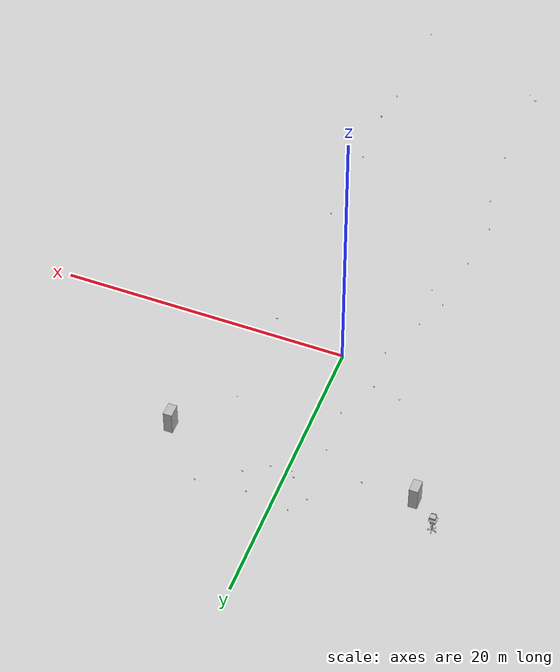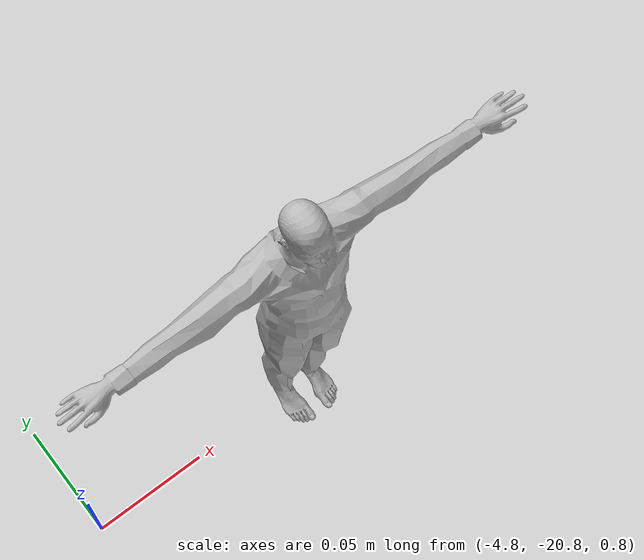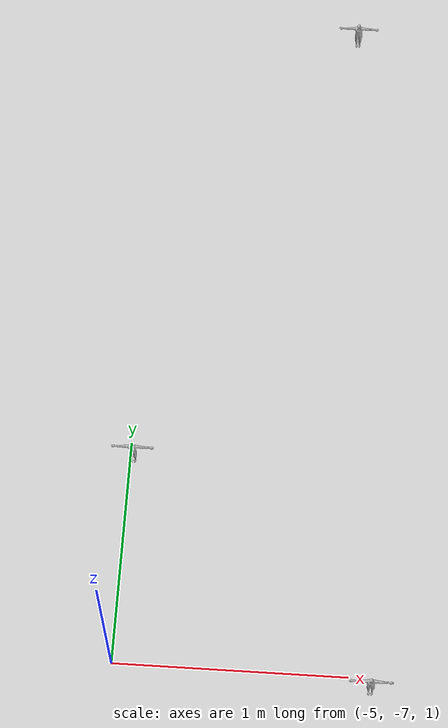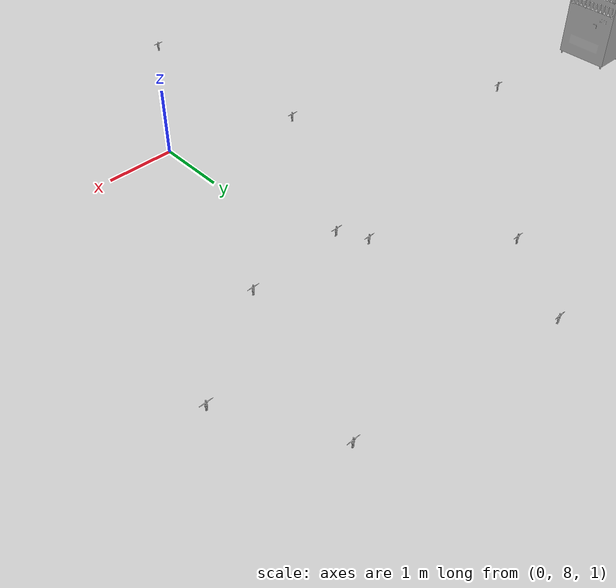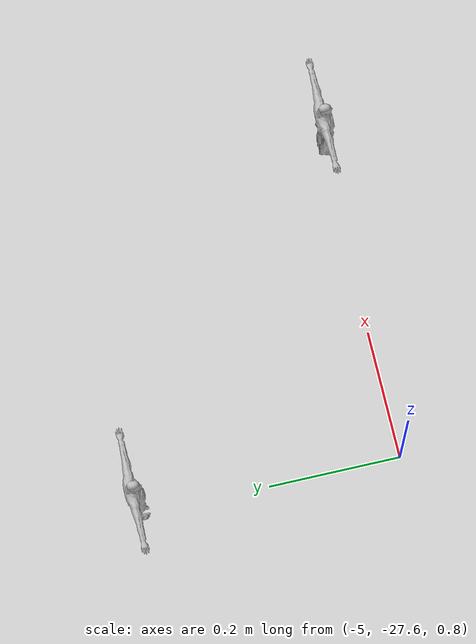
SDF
<sdf version="1.6">
 <world name="hospital_peak_shift_change">
  <gravity>0 0 -9.8</gravity>
  <physics default="0" name="default_physics" type="ode">
   <max_step_size>0.01</max_step_size>
   <real_time_factor>1</real_time_factor>
   <real_time_update_rate>100</real_time_update_rate>
  </physics>
  <scene><ambient>0.6 0.6 0.6 1</ambient><background>0.4 0.4 0.4 1</background><shadows>false</shadows></scene>
  <include><uri>model://sun</uri></include>
  <model name="ground_plane_large">
   <static>true</static>
   <pose>0 0 -0.1 0 0 0</pose>
   <link name="link">
    <collision name="collision">
     <geometry><plane><normal>0 0 1</normal><size>1000 1000</size></plane></geometry>
    </collision>
    <visual name="visual">
     <geometry><plane><normal>0 0 1</normal><size>1000 1000</size></plane></geometry>
    </visual>
   </link>
  </model>
  <model name="VendingMachine_1">
   <include>
    <uri>model://VendingMachine</uri>
    <static>true</static>
    <pose>-8.45694 9.63064 0 0 -0 0</pose>
   </include>
  </model>
  <model name="VendingMachine_2">
   <include>
    <uri>model://VendingMachine</uri>
    <static>true</static>
    <pose>8.35378 9.64852 -3e-06 -6e-06 0 0</pose>
   </include>
  </model>
  <model name="BPCart_1">
   <include>
    <uri>model://BPCart</uri>
    <static>true</static>
    <pose>-10.1788 11.173 0.003446 1e-06 -0 0.003096</pose>
   </include>
  </model>
  <model name="peak_1">
   <pose>-0.6 10.8 0 0 0 0</pose>
   <static>false</static>
   <link name="link">
    <inertial>
     <mass>5.0</mass>
     <inertia><ixx>0.1</ixx><ixy>0</ixy><ixz>0</ixz><iyy>0.1</iyy><iyz>0</iyz><izz>0.1</izz></inertia>
    </inertial>
    <collision name="collision">
     <geometry><box><size>0.5 0.5 1.8</size></box></geometry>
     <pose>0 0 0.9 0 0 0</pose>
    </collision>
    <visual name="visual">
     <pose>0 0 0.9 0 0 0</pose>
     <geometry>
      <mesh><uri>/usr/share/gazebo-11/media/models/stand.dae</uri><scale>1.0 1.0 1.0</scale></mesh>
     </geometry>
    </visual>
   </link>
   <plugin name="peak_1_planar_move" filename="libgazebo_ros_planar_move.so">
    <ros><namespace>peak_1</namespace></ros>
    <update_rate>50</update_rate>
    <publish_odom>false</publish_odom>
    <publish_odom_tf>false</publish_odom_tf>
   </plugin>
  </model>
  <model name="peak_2">
   <pose>-2.0 8.4 0 0 0 0</pose>
   <static>false</static>
   <link name="link">
    <inertial>
     <mass>5.0</mass>
     <inertia><ixx>0.1</ixx><ixy>0</ixy><ixz>0</ixz><iyy>0.1</iyy><iyz>0</iyz><izz>0.1</izz></inertia>
    </inertial>
    <collision name="collision">
     <geometry><box><size>0.5 0.5 1.8</size></box></geometry>
     <pose>0 0 0.9 0 0 0</pose>
    </collision>
    <visual name="visual">
     <pose>0 0 0.9 0 0 0</pose>
     <geometry>
      <mesh><uri>/usr/share/gazebo-11/media/models/stand.dae</uri><scale>1.0 1.0 1.0</scale></mesh>
     </geometry>
    </visual>
   </link>
   <plugin name="peak_2_planar_move" filename="libgazebo_ros_planar_move.so">
    <ros><namespace>peak_2</namespace></ros>
    <update_rate>50</update_rate>
    <publish_odom>false</publish_odom>
    <publish_odom_tf>false</publish_odom_tf>
   </plugin>
  </model>
  <model name="peak_3">
   <pose>-1.8 5.2 0 0 0 0</pose>
   <static>false</static>
   <link name="link">
    <inertial>
     <mass>5.0</mass>
     <inertia><ixx>0.1</ixx><ixy>0</ixy><ixz>0</ixz><iyy>0.1</iyy><iyz>0</iyz><izz>0.1</izz></inertia>
    </inertial>
    <collision name="collision">
     <geometry><box><size>0.5 0.5 1.8</size></box></geometry>
     <pose>0 0 0.9 0 0 0</pose>
    </collision>
    <visual name="visual">
     <pose>0 0 0.9 0 0 0</pose>
     <geometry>
      <mesh><uri>/usr/share/gazebo-11/media/models/stand.dae</uri><scale>1.0 1.0 1.0</scale></mesh>
     </geometry>
    </visual>
   </link>
   <plugin name="peak_3_planar_move" filename="libgazebo_ros_planar_move.so">
    <ros><namespace>peak_3</namespace></ros>
    <update_rate>50</update_rate>
    <publish_odom>false</publish_odom>
    <publish_odom_tf>false</publish_odom_tf>
   </plugin>
  </model>
  <model name="peak_4">
   <pose>-3.1 2.4 0 0 0 0</pose>
   <static>false</static>
   <link name="link">
    <inertial>
     <mass>5.0</mass>
     <inertia><ixx>0.1</ixx><ixy>0</ixy><ixz>0</ixz><iyy>0.1</iyy><iyz>0</iyz><izz>0.1</izz></inertia>
    </inertial>
    <collision name="collision">
     <geometry><box><size>0.5 0.5 1.8</size></box></geometry>
     <pose>0 0 0.9 0 0 0</pose>
    </collision>
    <visual name="visual">
     <pose>0 0 0.9 0 0 0</pose>
     <geometry>
      <mesh><uri>/usr/share/gazebo-11/media/models/stand.dae</uri><scale>1.0 1.0 1.0</scale></mesh>
     </geometry>
    </visual>
   </link>
   <plugin name="peak_4_planar_move" filename="libgazebo_ros_planar_move.so">
    <ros><namespace>peak_4</namespace></ros>
    <update_rate>50</update_rate>
    <publish_odom>false</publish_odom>
    <publish_odom_tf>false</publish_odom_tf>
   </plugin>
  </model>
  <model name="peak_5">
   <pose>-2.8 -0.6 0 0 0 0</pose>
   <static>false</static>
   <link name="link">
    <inertial>
     <mass>5.0</mass>
     <inertia><ixx>0.1</ixx><ixy>0</ixy><ixz>0</ixz><iyy>0.1</iyy><iyz>0</iyz><izz>0.1</izz></inertia>
    </inertial>
    <collision name="collision">
     <geometry><box><size>0.5 0.5 1.8</size></box></geometry>
     <pose>0 0 0.9 0 0 0</pose>
    </collision>
    <visual name="visual">
     <pose>0 0 0.9 0 0 0</pose>
     <geometry>
      <mesh><uri>/usr/share/gazebo-11/media/models/stand.dae</uri><scale>1.0 1.0 1.0</scale></mesh>
     </geometry>
    </visual>
   </link>
   <plugin name="peak_5_planar_move" filename="libgazebo_ros_planar_move.so">
    <ros><namespace>peak_5</namespace></ros>
    <update_rate>50</update_rate>
    <publish_odom>false</publish_odom>
    <publish_odom_tf>false</publish_odom_tf>
   </plugin>
  </model>
  <model name="peak_6">
   <pose>-4.1 -3.8 0 0 0 0</pose>
   <static>false</static>
   <link name="link">
    <inertial>
     <mass>5.0</mass>
     <inertia><ixx>0.1</ixx><ixy>0</ixy><ixz>0</ixz><iyy>0.1</iyy><iyz>0</iyz><izz>0.1</izz></inertia>
    </inertial>
    <collision name="collision">
     <geometry><box><size>0.5 0.5 1.8</size></box></geometry>
     <pose>0 0 0.9 0 0 0</pose>
    </collision>
    <visual name="visual">
     <pose>0 0 0.9 0 0 0</pose>
     <geometry>
      <mesh><uri>/usr/share/gazebo-11/media/models/stand.dae</uri><scale>1.0 1.0 1.0</scale></mesh>
     </geometry>
    </visual>
   </link>
   <plugin name="peak_6_planar_move" filename="libgazebo_ros_planar_move.so">
    <ros><namespace>peak_6</namespace></ros>
    <update_rate>50</update_rate>
    <publish_odom>false</publish_odom>
    <publish_odom_tf>false</publish_odom_tf>
   </plugin>
  </model>
  <model name="peak_7">
   <pose>-3.9 -7.0 0 0 0 0</pose>
   <static>false</static>
   <link name="link">
    <inertial>
     <mass>5.0</mass>
     <inertia><ixx>0.1</ixx><ixy>0</ixy><ixz>0</ixz><iyy>0.1</iyy><iyz>0</iyz><izz>0.1</izz></inertia>
    </inertial>
    <collision name="collision">
     <geometry><box><size>0.5 0.5 1.8</size></box></geometry>
     <pose>0 0 0.9 0 0 0</pose>
    </collision>
    <visual name="visual">
     <pose>0 0 0.9 0 0 0</pose>
     <geometry>
      <mesh><uri>/usr/share/gazebo-11/media/models/stand.dae</uri><scale>1.0 1.0 1.0</scale></mesh>
     </geometry>
    </visual>
   </link>
   <plugin name="peak_7_planar_move" filename="libgazebo_ros_planar_move.so">
    <ros><namespace>peak_7</namespace></ros>
    <update_rate>50</update_rate>
    <publish_odom>false</publish_odom>
    <publish_odom_tf>false</publish_odom_tf>
   </plugin>
  </model>
  <model name="peak_8">
   <pose>-5.4 -10.2 0 0 0 0</pose>
   <static>false</static>
   <link name="link">
    <inertial>
     <mass>5.0</mass>
     <inertia><ixx>0.1</ixx><ixy>0</ixy><ixz>0</ixz><iyy>0.1</iyy><iyz>0</iyz><izz>0.1</izz></inertia>
    </inertial>
    <collision name="collision">
     <geometry><box><size>0.5 0.5 1.8</size></box></geometry>
     <pose>0 0 0.9 0 0 0</pose>
    </collision>
    <visual name="visual">
     <pose>0 0 0.9 0 0 0</pose>
     <geometry>
      <mesh><uri>/usr/share/gazebo-11/media/models/stand.dae</uri><scale>1.0 1.0 1.0</scale></mesh>
     </geometry>
    </visual>
   </link>
   <plugin name="peak_8_planar_move" filename="libgazebo_ros_planar_move.so">
    <ros><namespace>peak_8</namespace></ros>
    <update_rate>50</update_rate>
    <publish_odom>false</publish_odom>
    <publish_odom_tf>false</publish_odom_tf>
   </plugin>
  </model>
  <model name="peak_9">
   <pose>-5.8 -13.8 0 0 0 0</pose>
   <static>false</static>
   <link name="link">
    <inertial>
     <mass>5.0</mass>
     <inertia><ixx>0.1</ixx><ixy>0</ixy><ixz>0</ixz><iyy>0.1</iyy><iyz>0</iyz><izz>0.1</izz></inertia>
    </inertial>
    <collision name="collision">
     <geometry><box><size>0.5 0.5 1.8</size></box></geometry>
     <pose>0 0 0.9 0 0 0</pose>
    </collision>
    <visual name="visual">
     <pose>0 0 0.9 0 0 0</pose>
     <geometry>
      <mesh><uri>/usr/share/gazebo-11/media/models/stand.dae</uri><scale>1.0 1.0 1.0</scale></mesh>
     </geometry>
    </visual>
   </link>
   <plugin name="peak_9_planar_move" filename="libgazebo_ros_planar_move.so">
    <ros><namespace>peak_9</namespace></ros>
    <update_rate>50</update_rate>
    <publish_odom>false</publish_odom>
    <publish_odom_tf>false</publish_odom_tf>
   </plugin>
  </model>
  <model name="peak_10">
   <pose>4.8 -17.2 0 0 0 0</pose>
   <static>false</static>
   <link name="link">
    <inertial>
     <mass>5.0</mass>
     <inertia><ixx>0.1</ixx><ixy>0</ixy><ixz>0</ixz><iyy>0.1</iyy><iyz>0</iyz><izz>0.1</izz></inertia>
    </inertial>
    <collision name="collision">
     <geometry><box><size>0.5 0.5 1.8</size></box></geometry>
     <pose>0 0 0.9 0 0 0</pose>
    </collision>
    <visual name="visual">
     <pose>0 0 0.9 0 0 0</pose>
     <geometry>
      <mesh><uri>/usr/share/gazebo-11/media/models/stand.dae</uri><scale>1.0 1.0 1.0</scale></mesh>
     </geometry>
    </visual>
   </link>
   <plugin name="peak_10_planar_move" filename="libgazebo_ros_planar_move.so">
    <ros><namespace>peak_10</namespace></ros>
    <update_rate>50</update_rate>
    <publish_odom>false</publish_odom>
    <publish_odom_tf>false</publish_odom_tf>
   </plugin>
  </model>
  <model name="peak_11">
   <pose>-4.7 -20.8 0 0 0 0</pose>
   <static>false</static>
   <link name="link">
    <inertial>
     <mass>5.0</mass>
     <inertia><ixx>0.1</ixx><ixy>0</ixy><ixz>0</ixz><iyy>0.1</iyy><iyz>0</iyz><izz>0.1</izz></inertia>
    </inertial>
    <collision name="collision">
     <geometry><box><size>0.5 0.5 1.8</size></box></geometry>
     <pose>0 0 0.9 0 0 0</pose>
    </collision>
    <visual name="visual">
     <pose>0 0 0.9 0 0 0</pose>
     <geometry>
      <mesh><uri>/usr/share/gazebo-11/media/models/stand.dae</uri><scale>1.0 1.0 1.0</scale></mesh>
     </geometry>
    </visual>
   </link>
   <plugin name="peak_11_planar_move" filename="libgazebo_ros_planar_move.so">
    <ros><namespace>peak_11</namespace></ros>
    <update_rate>50</update_rate>
    <publish_odom>false</publish_odom>
    <publish_odom_tf>false</publish_odom_tf>
   </plugin>
  </model>
  <model name="peak_12">
   <pose>4.6 -24.0 0 0 0 0</pose>
   <static>false</static>
   <link name="link">
    <inertial>
     <mass>5.0</mass>
     <inertia><ixx>0.1</ixx><ixy>0</ixy><ixz>0</ixz><iyy>0.1</iyy><iyz>0</iyz><izz>0.1</izz></inertia>
    </inertial>
    <collision name="collision">
     <geometry><box><size>0.5 0.5 1.8</size></box></geometry>
     <pose>0 0 0.9 0 0 0</pose>
    </collision>
    <visual name="visual">
     <pose>0 0 0.9 0 0 0</pose>
     <geometry>
      <mesh><uri>/usr/share/gazebo-11/media/models/stand.dae</uri><scale>1.0 1.0 1.0</scale></mesh>
     </geometry>
    </visual>
   </link>
   <plugin name="peak_12_planar_move" filename="libgazebo_ros_planar_move.so">
    <ros><namespace>peak_12</namespace></ros>
    <update_rate>50</update_rate>
    <publish_odom>false</publish_odom>
    <publish_odom_tf>false</publish_odom_tf>
   </plugin>
  </model>
  <model name="peak_13">
   <pose>-4.5 -27.6 0 0 0 0</pose>
   <static>false</static>
   <link name="link">
    <inertial>
     <mass>5.0</mass>
     <inertia><ixx>0.1</ixx><ixy>0</ixy><ixz>0</ixz><iyy>0.1</iyy><iyz>0</iyz><izz>0.1</izz></inertia>
    </inertial>
    <collision name="collision">
     <geometry><box><size>0.5 0.5 1.8</size></box></geometry>
     <pose>0 0 0.9 0 0 0</pose>
    </collision>
    <visual name="visual">
     <pose>0 0 0.9 0 0 0</pose>
     <geometry>
      <mesh><uri>/usr/share/gazebo-11/media/models/stand.dae</uri><scale>1.0 1.0 1.0</scale></mesh>
     </geometry>
    </visual>
   </link>
   <plugin name="peak_13_planar_move" filename="libgazebo_ros_planar_move.so">
    <ros><namespace>peak_13</namespace></ros>
    <update_rate>50</update_rate>
    <publish_odom>false</publish_odom>
    <publish_odom_tf>false</publish_odom_tf>
   </plugin>
  </model>
  <model name="peak_14">
   <pose>4.4 -31.2 0 0 0 0</pose>
   <static>false</static>
   <link name="link">
    <inertial>
     <mass>5.0</mass>
     <inertia><ixx>0.1</ixx><ixy>0</ixy><ixz>0</ixz><iyy>0.1</iyy><iyz>0</iyz><izz>0.1</izz></inertia>
    </inertial>
    <collision name="collision">
     <geometry><box><size>0.5 0.5 1.8</size></box></geometry>
     <pose>0 0 0.9 0 0 0</pose>
    </collision>
    <visual name="visual">
     <pose>0 0 0.9 0 0 0</pose>
     <geometry>
      <mesh><uri>/usr/share/gazebo-11/media/models/stand.dae</uri><scale>1.0 1.0 1.0</scale></mesh>
     </geometry>
    </visual>
   </link>
   <plugin name="peak_14_planar_move" filename="libgazebo_ros_planar_move.so">
    <ros><namespace>peak_14</namespace></ros>
    <update_rate>50</update_rate>
    <publish_odom>false</publish_odom>
    <publish_odom_tf>false</publish_odom_tf>
   </plugin>
  </model>
  <model name="peak_15">
   <pose>5.0 13.6 0 0 0 0</pose>
   <static>false</static>
   <link name="link">
    <inertial>
     <mass>5.0</mass>
     <inertia><ixx>0.1</ixx><ixy>0</ixy><ixz>0</ixz><iyy>0.1</iyy><iyz>0</iyz><izz>0.1</izz></inertia>
    </inertial>
    <collision name="collision">
     <geometry><box><size>0.5 0.5 1.8</size></box></geometry>
     <pose>0 0 0.9 0 0 0</pose>
    </collision>
    <visual name="visual">
     <pose>0 0 0.9 0 0 0</pose>
     <geometry>
      <mesh><uri>/usr/share/gazebo-11/media/models/stand.dae</uri><scale>1.0 1.0 1.0</scale></mesh>
     </geometry>
    </visual>
   </link>
   <plugin name="peak_15_planar_move" filename="libgazebo_ros_planar_move.so">
    <ros><namespace>peak_15</namespace></ros>
    <update_rate>50</update_rate>
    <publish_odom>false</publish_odom>
    <publish_odom_tf>false</publish_odom_tf>
   </plugin>
  </model>
  <model name="peak_16">
   <pose>-5.0 10.0 0 0 0 0</pose>
   <static>false</static>
   <link name="link">
    <inertial>
     <mass>5.0</mass>
     <inertia><ixx>0.1</ixx><ixy>0</ixy><ixz>0</ixz><iyy>0.1</iyy><iyz>0</iyz><izz>0.1</izz></inertia>
    </inertial>
    <collision name="collision">
     <geometry><box><size>0.5 0.5 1.8</size></box></geometry>
     <pose>0 0 0.9 0 0 0</pose>
    </collision>
    <visual name="visual">
     <pose>0 0 0.9 0 0 0</pose>
     <geometry>
      <mesh><uri>/usr/share/gazebo-11/media/models/stand.dae</uri><scale>1.0 1.0 1.0</scale></mesh>
     </geometry>
    </visual>
   </link>
   <plugin name="peak_16_planar_move" filename="libgazebo_ros_planar_move.so">
    <ros><namespace>peak_16</namespace></ros>
    <update_rate>50</update_rate>
    <publish_odom>false</publish_odom>
    <publish_odom_tf>false</publish_odom_tf>
   </plugin>
  </model>
  <model name="peak_17">
   <pose>5.0 6.4 0 0 0 0</pose>
   <static>false</static>
   <link name="link">
    <inertial>
     <mass>5.0</mass>
     <inertia><ixx>0.1</ixx><ixy>0</ixy><ixz>0</ixz><iyy>0.1</iyy><iyz>0</iyz><izz>0.1</izz></inertia>
    </inertial>
    <collision name="collision">
     <geometry><box><size>0.5 0.5 1.8</size></box></geometry>
     <pose>0 0 0.9 0 0 0</pose>
    </collision>
    <visual name="visual">
     <pose>0 0 0.9 0 0 0</pose>
     <geometry>
      <mesh><uri>/usr/share/gazebo-11/media/models/stand.dae</uri><scale>1.0 1.0 1.0</scale></mesh>
     </geometry>
    </visual>
   </link>
   <plugin name="peak_17_planar_move" filename="libgazebo_ros_planar_move.so">
    <ros><namespace>peak_17</namespace></ros>
    <update_rate>50</update_rate>
    <publish_odom>false</publish_odom>
    <publish_odom_tf>false</publish_odom_tf>
   </plugin>
  </model>
  <model name="peak_18">
   <pose>-5.0 2.8 0 0 0 0</pose>
   <static>false</static>
   <link name="link">
    <inertial>
     <mass>5.0</mass>
     <inertia><ixx>0.1</ixx><ixy>0</ixy><ixz>0</ixz><iyy>0.1</iyy><iyz>0</iyz><izz>0.1</izz></inertia>
    </inertial>
    <collision name="collision">
     <geometry><box><size>0.5 0.5 1.8</size></box></geometry>
     <pose>0 0 0.9 0 0 0</pose>
    </collision>
    <visual name="visual">
     <pose>0 0 0.9 0 0 0</pose>
     <geometry>
      <mesh><uri>/usr/share/gazebo-11/media/models/stand.dae</uri><scale>1.0 1.0 1.0</scale></mesh>
     </geometry>
    </visual>
   </link>
   <plugin name="peak_18_planar_move" filename="libgazebo_ros_planar_move.so">
    <ros><namespace>peak_18</namespace></ros>
    <update_rate>50</update_rate>
    <publish_odom>false</publish_odom>
    <publish_odom_tf>false</publish_odom_tf>
   </plugin>
  </model>
  <model name="peak_19">
   <pose>5.0 -0.8 0 0 0 0</pose>
   <static>false</static>
   <link name="link">
    <inertial>
     <mass>5.0</mass>
     <inertia><ixx>0.1</ixx><ixy>0</ixy><ixz>0</ixz><iyy>0.1</iyy><iyz>0</iyz><izz>0.1</izz></inertia>
    </inertial>
    <collision name="collision">
     <geometry><box><size>0.5 0.5 1.8</size></box></geometry>
     <pose>0 0 0.9 0 0 0</pose>
    </collision>
    <visual name="visual">
     <pose>0 0 0.9 0 0 0</pose>
     <geometry>
      <mesh><uri>/usr/share/gazebo-11/media/models/stand.dae</uri><scale>1.0 1.0 1.0</scale></mesh>
     </geometry>
    </visual>
   </link>
   <plugin name="peak_19_planar_move" filename="libgazebo_ros_planar_move.so">
    <ros><namespace>peak_19</namespace></ros>
    <update_rate>50</update_rate>
    <publish_odom>false</publish_odom>
    <publish_odom_tf>false</publish_odom_tf>
   </plugin>
  </model>
  <model name="peak_20">
   <pose>-5.0 -6.0 0 0 0 0</pose>
   <static>false</static>
   <link name="link">
    <inertial>
     <mass>5.0</mass>
     <inertia><ixx>0.1</ixx><ixy>0</ixy><ixz>0</ixz><iyy>0.1</iyy><iyz>0</iyz><izz>0.1</izz></inertia>
    </inertial>
    <collision name="collision">
     <geometry><box><size>0.5 0.5 1.8</size></box></geometry>
     <pose>0 0 0.9 0 0 0</pose>
    </collision>
    <visual name="visual">
     <pose>0 0 0.9 0 0 0</pose>
     <geometry>
      <mesh><uri>/usr/share/gazebo-11/media/models/stand.dae</uri><scale>1.0 1.0 1.0</scale></mesh>
     </geometry>
    </visual>
   </link>
   <plugin name="peak_20_planar_move" filename="libgazebo_ros_planar_move.so">
    <ros><namespace>peak_20</namespace></ros>
    <update_rate>50</update_rate>
    <publish_odom>false</publish_odom>
    <publish_odom_tf>false</publish_odom_tf>
   </plugin>
  </model>
  <model name="peak_21">
   <pose>5.0 -11.2 0 0 0 0</pose>
   <static>false</static>
   <link name="link">
    <inertial>
     <mass>5.0</mass>
     <inertia><ixx>0.1</ixx><ixy>0</ixy><ixz>0</ixz><iyy>0.1</iyy><iyz>0</iyz><izz>0.1</izz></inertia>
    </inertial>
    <collision name="collision">
     <geometry><box><size>0.5 0.5 1.8</size></box></geometry>
     <pose>0 0 0.9 0 0 0</pose>
    </collision>
    <visual name="visual">
     <pose>0 0 0.9 0 0 0</pose>
     <geometry>
      <mesh><uri>/usr/share/gazebo-11/media/models/stand.dae</uri><scale>1.0 1.0 1.0</scale></mesh>
     </geometry>
    </visual>
   </link>
   <plugin name="peak_21_planar_move" filename="libgazebo_ros_planar_move.so">
    <ros><namespace>peak_21</namespace></ros>
    <update_rate>50</update_rate>
    <publish_odom>false</publish_odom>
    <publish_odom_tf>false</publish_odom_tf>
   </plugin>
  </model>
  <model name="peak_22">
   <pose>-5.0 -16.4 0 0 0 0</pose>
   <static>false</static>
   <link name="link">
    <inertial>
     <mass>5.0</mass>
     <inertia><ixx>0.1</ixx><ixy>0</ixy><ixz>0</ixz><iyy>0.1</iyy><iyz>0</iyz><izz>0.1</izz></inertia>
    </inertial>
    <collision name="collision">
     <geometry><box><size>0.5 0.5 1.8</size></box></geometry>
     <pose>0 0 0.9 0 0 0</pose>
    </collision>
    <visual name="visual">
     <pose>0 0 0.9 0 0 0</pose>
     <geometry>
      <mesh><uri>/usr/share/gazebo-11/media/models/stand.dae</uri><scale>1.0 1.0 1.0</scale></mesh>
     </geometry>
    </visual>
   </link>
   <plugin name="peak_22_planar_move" filename="libgazebo_ros_planar_move.so">
    <ros><namespace>peak_22</namespace></ros>
    <update_rate>50</update_rate>
    <publish_odom>false</publish_odom>
    <publish_odom_tf>false</publish_odom_tf>
   </plugin>
  </model>
  <model name="peak_23">
   <pose>5.0 -21.6 0 0 0 0</pose>
   <static>false</static>
   <link name="link">
    <inertial>
     <mass>5.0</mass>
     <inertia><ixx>0.1</ixx><ixy>0</ixy><ixz>0</ixz><iyy>0.1</iyy><iyz>0</iyz><izz>0.1</izz></inertia>
    </inertial>
    <collision name="collision">
     <geometry><box><size>0.5 0.5 1.8</size></box></geometry>
     <pose>0 0 0.9 0 0 0</pose>
    </collision>
    <visual name="visual">
     <pose>0 0 0.9 0 0 0</pose>
     <geometry>
      <mesh><uri>/usr/share/gazebo-11/media/models/stand.dae</uri><scale>1.0 1.0 1.0</scale></mesh>
     </geometry>
    </visual>
   </link>
   <plugin name="peak_23_planar_move" filename="libgazebo_ros_planar_move.so">
    <ros><namespace>peak_23</namespace></ros>
    <update_rate>50</update_rate>
    <publish_odom>false</publish_odom>
    <publish_odom_tf>false</publish_odom_tf>
   </plugin>
  </model>
  <model name="peak_24">
   <pose>-5.0 -27.2 0 0 0 0</pose>
   <static>false</static>
   <link name="link">
    <inertial>
     <mass>5.0</mass>
     <inertia><ixx>0.1</ixx><ixy>0</ixy><ixz>0</ixz><iyy>0.1</iyy><iyz>0</iyz><izz>0.1</izz></inertia>
    </inertial>
    <collision name="collision">
     <geometry><box><size>0.5 0.5 1.8</size></box></geometry>
     <pose>0 0 0.9 0 0 0</pose>
    </collision>
    <visual name="visual">
     <pose>0 0 0.9 0 0 0</pose>
     <geometry>
      <mesh><uri>/usr/share/gazebo-11/media/models/stand.dae</uri><scale>1.0 1.0 1.0</scale></mesh>
     </geometry>
    </visual>
   </link>
   <plugin name="peak_24_planar_move" filename="libgazebo_ros_planar_move.so">
    <ros><namespace>peak_24</namespace></ros>
    <update_rate>50</update_rate>
    <publish_odom>false</publish_odom>
    <publish_odom_tf>false</publish_odom_tf>
   </plugin>
  </model>
  <model name="peak_25">
   <pose>-1.4 13.7 0 0 0 0</pose>
   <static>false</static>
   <link name="link">
    <inertial>
     <mass>5.0</mass>
     <inertia><ixx>0.1</ixx><ixy>0</ixy><ixz>0</ixz><iyy>0.1</iyy><iyz>0</iyz><izz>0.1</izz></inertia>
    </inertial>
    <collision name="collision">
     <geometry><box><size>0.5 0.5 1.8</size></box></geometry>
     <pose>0 0 0.9 0 0 0</pose>
    </collision>
    <visual name="visual">
     <pose>0 0 0.9 0 0 0</pose>
     <geometry>
      <mesh><uri>/usr/share/gazebo-11/media/models/stand.dae</uri><scale>1.0 1.0 1.0</scale></mesh>
     </geometry>
    </visual>
   </link>
   <plugin name="peak_25_planar_move" filename="libgazebo_ros_planar_move.so">
    <ros><namespace>peak_25</namespace></ros>
    <update_rate>50</update_rate>
    <publish_odom>false</publish_odom>
    <publish_odom_tf>false</publish_odom_tf>
   </plugin>
  </model>
  <model name="peak_26">
   <pose>1.6 13.3 0 0 0 0</pose>
   <static>false</static>
   <link name="link">
    <inertial>
     <mass>5.0</mass>
     <inertia><ixx>0.1</ixx><ixy>0</ixy><ixz>0</ixz><iyy>0.1</iyy><iyz>0</iyz><izz>0.1</izz></inertia>
    </inertial>
    <collision name="collision">
     <geometry><box><size>0.5 0.5 1.8</size></box></geometry>
     <pose>0 0 0.9 0 0 0</pose>
    </collision>
    <visual name="visual">
     <pose>0 0 0.9 0 0 0</pose>
     <geometry>
      <mesh><uri>/usr/share/gazebo-11/media/models/stand.dae</uri><scale>1.0 1.0 1.0</scale></mesh>
     </geometry>
    </visual>
   </link>
   <plugin name="peak_26_planar_move" filename="libgazebo_ros_planar_move.so">
    <ros><namespace>peak_26</namespace></ros>
    <update_rate>50</update_rate>
    <publish_odom>false</publish_odom>
    <publish_odom_tf>false</publish_odom_tf>
   </plugin>
  </model>
  <model name="peak_27">
   <pose>-2.2 12.5 0 0 0 0</pose>
   <static>false</static>
   <link name="link">
    <inertial>
     <mass>5.0</mass>
     <inertia><ixx>0.1</ixx><ixy>0</ixy><ixz>0</ixz><iyy>0.1</iyy><iyz>0</iyz><izz>0.1</izz></inertia>
    </inertial>
    <collision name="collision">
     <geometry><box><size>0.5 0.5 1.8</size></box></geometry>
     <pose>0 0 0.9 0 0 0</pose>
    </collision>
    <visual name="visual">
     <pose>0 0 0.9 0 0 0</pose>
     <geometry>
      <mesh><uri>/usr/share/gazebo-11/media/models/stand.dae</uri><scale>1.0 1.0 1.0</scale></mesh>
     </geometry>
    </visual>
   </link>
   <plugin name="peak_27_planar_move" filename="libgazebo_ros_planar_move.so">
    <ros><namespace>peak_27</namespace></ros>
    <update_rate>50</update_rate>
    <publish_odom>false</publish_odom>
    <publish_odom_tf>false</publish_odom_tf>
   </plugin>
  </model>
  <model name="peak_28">
   <pose>2.4 11.9 0 0 0 0</pose>
   <static>false</static>
   <link name="link">
    <inertial>
     <mass>5.0</mass>
     <inertia><ixx>0.1</ixx><ixy>0</ixy><ixz>0</ixz><iyy>0.1</iyy><iyz>0</iyz><izz>0.1</izz></inertia>
    </inertial>
    <collision name="collision">
     <geometry><box><size>0.5 0.5 1.8</size></box></geometry>
     <pose>0 0 0.9 0 0 0</pose>
    </collision>
    <visual name="visual">
     <pose>0 0 0.9 0 0 0</pose>
     <geometry>
      <mesh><uri>/usr/share/gazebo-11/media/models/stand.dae</uri><scale>1.0 1.0 1.0</scale></mesh>
     </geometry>
    </visual>
   </link>
   <plugin name="peak_28_planar_move" filename="libgazebo_ros_planar_move.so">
    <ros><namespace>peak_28</namespace></ros>
    <update_rate>50</update_rate>
    <publish_odom>false</publish_odom>
    <publish_odom_tf>false</publish_odom_tf>
   </plugin>
  </model>
  <model name="peak_29">
   <pose>-0.8 11.2 0 0 0 0</pose>
   <static>false</static>
   <link name="link">
    <inertial>
     <mass>5.0</mass>
     <inertia><ixx>0.1</ixx><ixy>0</ixy><ixz>0</ixz><iyy>0.1</iyy><iyz>0</iyz><izz>0.1</izz></inertia>
    </inertial>
    <collision name="collision">
     <geometry><box><size>0.5 0.5 1.8</size></box></geometry>
     <pose>0 0 0.9 0 0 0</pose>
    </collision>
    <visual name="visual">
     <pose>0 0 0.9 0 0 0</pose>
     <geometry>
      <mesh><uri>/usr/share/gazebo-11/media/models/stand.dae</uri><scale>1.0 1.0 1.0</scale></mesh>
     </geometry>
    </visual>
   </link>
   <plugin name="peak_29_planar_move" filename="libgazebo_ros_planar_move.so">
    <ros><namespace>peak_29</namespace></ros>
    <update_rate>50</update_rate>
    <publish_odom>false</publish_odom>
    <publish_odom_tf>false</publish_odom_tf>
   </plugin>
  </model>
  <model name="peak_30">
   <pose>0.9 10.9 0 0 0 0</pose>
   <static>false</static>
   <link name="link">
    <inertial>
     <mass>5.0</mass>
     <inertia><ixx>0.1</ixx><ixy>0</ixy><ixz>0</ixz><iyy>0.1</iyy><iyz>0</iyz><izz>0.1</izz></inertia>
    </inertial>
    <collision name="collision">
     <geometry><box><size>0.5 0.5 1.8</size></box></geometry>
     <pose>0 0 0.9 0 0 0</pose>
    </collision>
    <visual name="visual">
     <pose>0 0 0.9 0 0 0</pose>
     <geometry>
      <mesh><uri>/usr/share/gazebo-11/media/models/stand.dae</uri><scale>1.0 1.0 1.0</scale></mesh>
     </geometry>
    </visual>
   </link>
   <plugin name="peak_30_planar_move" filename="libgazebo_ros_planar_move.so">
    <ros><namespace>peak_30</namespace></ros>
    <update_rate>50</update_rate>
    <publish_odom>false</publish_odom>
    <publish_odom_tf>false</publish_odom_tf>
   </plugin>
  </model>
 </world>
</sdf>

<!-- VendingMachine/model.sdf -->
<sdf version="1.6">
  <model name='VendingMachine'>
    <link name="body">
      <pose>0 0 0 0 0 0</pose>

      <visual name="visual">
        <geometry>
          <mesh>
            <uri>model://VendingMachine/meshes/VendingMachine.obj</uri>
          </mesh>
        </geometry>
      </visual>

      <collision name="collision">
        <geometry>
          <mesh>
            <uri>model://VendingMachine/meshes/VendingMachine.obj</uri>
          </mesh>
        </geometry>
      </collision>

    </link>
  </model>
</sdf>

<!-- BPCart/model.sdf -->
<sdf version="1.6">
  <model name='BPCart'>
    <link name="body">
      <pose>0 0 0 0 0 0</pose>

      <visual name="visual">
        <geometry>
          <mesh>
            <uri>model://BPCart/meshes/Cart_BP.obj</uri>
          </mesh>
        </geometry>
      </visual>

      <collision name="collision">
        <geometry>
          <mesh>
            <uri>model://BPCart/meshes/Cart_BP_Col.obj</uri>
          </mesh>
        </geometry>
      </collision>

    </link>
  </model>
</sdf>
